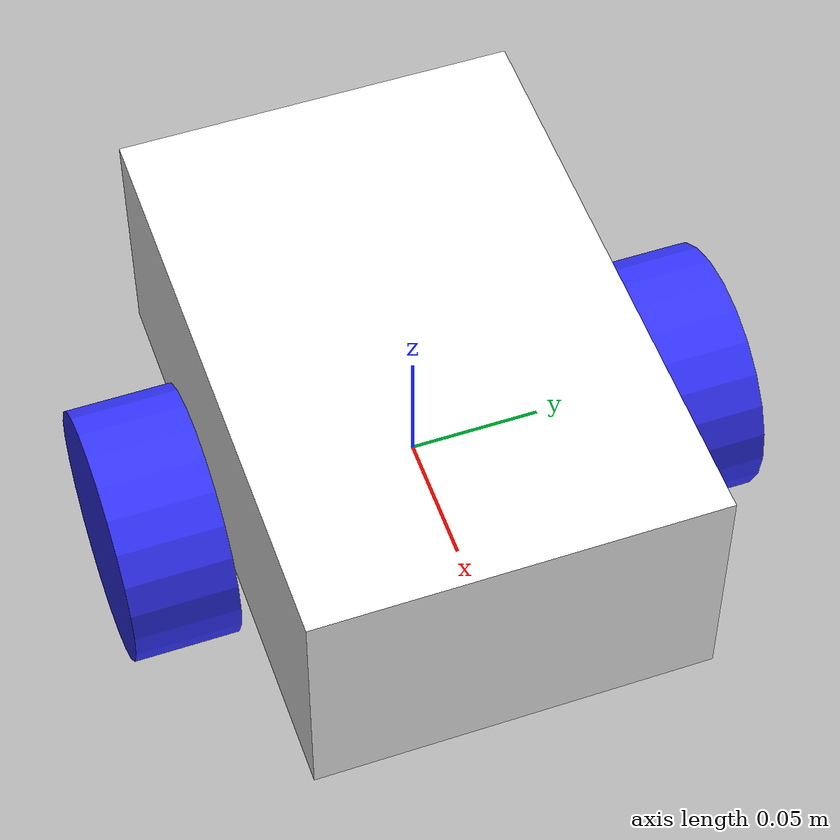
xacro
<?xml version="1.0"?>
<robot xmlns:xacro="http://www.ros.org/wiki/xacro">

    <xacro:include filename="$(find crab_bot)/crabbot_description/macros/inertial_macros.xacro" />
    <xacro:include filename="$(find crab_bot)/crabbot_description/macros/wheel.macros.xacro"/>

    <xacro:property name="chassis_length" value="0.225"/>
    <xacro:property name="chassis_width" value="0.153"/>
    <xacro:property name="chassis_height" value="0.0975"/>
    <xacro:property name="chassis_mass" value="4.0"/>
    <xacro:property name="wheel_radius" value="0.048"/>
    <xacro:property name="wheel_inner_radius" value="0.028"/>
    <xacro:property name="wheel_length" value="0.04"/>
    <xacro:property name="wheel_mass" value="0.5"/>
    <xacro:property name="wheel_separation" value="0.205"/>
    <xacro:property name="wheel_offset_x" value="0"/>
    <xacro:property name="wheel_offset_y" value="${wheel_separation/2}"/>
    <xacro:property name="wheel_offset_z" value="0.0"/>
    <xacro:property name="chassis_offset_z" value="0.02"/>
    <xacro:property name="caster_wheel_radius" value="0.02"/>
    <xacro:property name="caster_wheel_mass" value="0.1"/>
    <xacro:property name="caster_wheel_offset_x" value="0.073"/>
    <xacro:property name="caster_wheel_offset_z" value="${-wheel_radius + caster_wheel_radius + 0.001}"/>

    <material name="white">
        <color rgba="1 1 1 1"/>
    </material>

    <material name="orange">
        <color rgba="1 0.3 0.1 1"/>
    </material>

    <material name="blue">
        <color rgba="0.2 0.2 1 1"/>
    </material>

    <material name="black">
        <color rgba="0 0 0 1"/>
    </material>

    <material name="red">
        <color rgba="1 0 0 1"/>
    </material>

    <!-- BASE LINK -->

    <link name="base_link">

    </link>

    <!-- BASE_FOOTPRINT LINK -->

    <joint name="base_footprint_joint" type="fixed">
        <parent link="base_link"/>
        <child link="base_footprint"/>
        <origin xyz="0 0 -${wheel_radius}" rpy="0 0 0"/>
    </joint>

    <link name="base_footprint">
    </link>

    <!-- CHASSIS LINK -->

    <joint name="chassis_joint" type="fixed">
        <parent link="base_link"/>
        <child link="chassis"/>
        <origin xyz="0 0 ${-chassis_offset_z}"/>
    </joint>

    <link name="chassis">
        <!-- chassis visual -->
        <visual>
            <origin xyz="0 0 ${chassis_height/2}"/>
            <geometry>
                <box size="${chassis_length} ${chassis_width} ${chassis_height}"/>
            </geometry>
            <material name="white"/>
        </visual>
        <!-- chassis interact -->
        <collision>
            <origin xyz="0 0 ${chassis_height/2}"/>
            <geometry>
                <box size="${chassis_length} ${chassis_width} ${chassis_height}"/>
            </geometry>
        </collision>
        <!-- chassis phisical -->
        <xacro:inertial_box mass="${chassis_mass}" x="${chassis_length}" y="${chassis_width}" z="${chassis_height}">
            <origin xyz="0 0 ${chassis_height/2}" rpy="0 0 0"/>
        </xacro:inertial_box>
    </link>

    <gazebo reference="chassis">
        <material>Gazebo/White</material>
    </gazebo>

    <xacro:wheel prefix="right">
        <origin xyz="${wheel_offset_x} ${-wheel_offset_y} ${wheel_offset_z}" rpy="0 0 0" />
    </xacro:wheel>
    <xacro:wheel prefix="left">
        <origin xyz="${wheel_offset_x} ${wheel_offset_y} ${wheel_offset_z}" rpy="0 0 0" />
    </xacro:wheel>

    <!-- Caster wheel link -->

    <joint name="front_caster_wheel_joint" type="fixed">
        <parent link="base_link"/>
        <child link="front_caster_wheel"/>
        <origin xyz="${caster_wheel_offset_x} 0 ${caster_wheel_offset_z}"/>
    </joint>

    <link name="front_caster_wheel">
        <visual>
            <geometry>
                <sphere radius="${caster_wheel_radius}"/>1
            </geometry>
            <material name="blue"/>
        </visual>
        <collision>
            <geometry>
                <sphere radius="${caster_wheel_radius}"/>
            </geometry>
        </collision>
        <xacro:inertial_sphere mass="${caster_wheel_mass}" radius="${caster_wheel_radius}">
            <origin xyz="0 0 0" rpy="0 0 0"/>
        </xacro:inertial_sphere>
    </link>

    <gazebo reference="front_caster_wheel">
        <material>Gazebo/Blue</material>
        <mu1 value="0.001"/>
        <mu2 value="0.001"/>
    </gazebo>

    <joint name="back_caster_wheel_joint" type="fixed">
        <parent link="base_link"/>
        <child link="back_caster_wheel"/>
        <origin xyz="${-caster_wheel_offset_x} 0 ${caster_wheel_offset_z}"/>
    </joint>

    <link name="back_caster_wheel">
        <visual>
            <geometry>
                <sphere radius="${caster_wheel_radius}"/>1
            </geometry>
            <material name="blue"/>
        </visual>
        <collision>
            <geometry>
                <sphere radius="${caster_wheel_radius}"/>
            </geometry>
        </collision>
        <xacro:inertial_sphere mass="${caster_wheel_mass}" radius="${caster_wheel_radius}">
            <origin xyz="0 0 0" rpy="0 0 0"/>
        </xacro:inertial_sphere>
    </link>

    <gazebo reference="back_caster_wheel">
        <material>Gazebo/Blue</material>
        <mu1 value="0.001"/>
        <mu2 value="0.001"/>
    </gazebo>

</robot>

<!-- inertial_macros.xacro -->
<robot xmlns:xacro="http://www.ros.org/wiki/xacro" >

    <!-- Specify some standard inertial calculations https://en.wikipedia.org/wiki/List_of_moments_of_inertia -->
    <!-- These make use of xacro's mathematical functionality -->

    <xacro:macro name="inertial_sphere" params="mass radius *origin">
        <inertial>
            <xacro:insert_block name="origin"/>
            <mass value="${mass}" />
            <inertia ixx="${(2/5) * mass * (radius*radius)}" ixy="0.0" ixz="0.0"
                    iyy="${(2/5) * mass * (radius*radius)}" iyz="0.0"
                    izz="${(2/5) * mass * (radius*radius)}" />
        </inertial>
    </xacro:macro>

    <xacro:macro name="inertial_box" params="mass x y z *origin">
        <inertial>
            <xacro:insert_block name="origin"/>
            <mass value="${mass}" />
            <inertia ixx="${(1/12) * mass * (y*y+z*z)}" ixy="0.0" ixz="0.0"
                    iyy="${(1/12) * mass * (x*x+z*z)}" iyz="0.0"
                    izz="${(1/12) * mass * (x*x+y*y)}" />
        </inertial>
    </xacro:macro>

    <xacro:macro name="inertial_cylinder" params="mass length radius *origin">
        <inertial>
            <xacro:insert_block name="origin"/>
            <mass value="${mass}" />
            <inertia ixx="${(1/12) * mass * (3*radius*radius + length*length)}" ixy="0.0" ixz="0.0"
                    iyy="${(1/12) * mass * (radius*radius + length*length)}" iyz="0.0"
                    izz="${(1/12) * mass * (radius*radius)}" />
        </inertial>
    </xacro:macro>

</robot>

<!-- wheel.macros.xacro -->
<robot xmlns:xacro="http://www.ros.org/wiki/xacro">

    <!-- WHEEL MACROS -->

    <xacro:macro name="wheel" params= "prefix *joint_pose">
        <link name="${prefix}_wheel">
            <visual>
                <origin xyz="0 0 0" rpy="${pi/2} 0 0" />
                <geometry>
                    <cylinder radius="${wheel_radius}" length="${wheel_length}"/>
                </geometry>
                <material name="blue"/>
            </visual>
            <collision>
                <origin xyz="0 0 0" rpy="${pi/2} 0 0" />
                <geometry>
                    <sphere radius="${wheel_radius}"/>
                </geometry>
            </collision>
            <inertial>
                <origin xyz="0 0 0" rpy="0 0 0"/>
                <mass value="${wheel_mass}"/>
                <inertia
                    ixx="${wheel_mass / 12.0 * (3*wheel_radius*wheel_radius + wheel_length*wheel_length)}" ixy="0.0" ixz="0.0"
                    iyy="${wheel_mass / 2.0 * (wheel_radius*wheel_radius + wheel_inner_radius*wheel_inner_radius)}" iyz="0.0"
                    izz="${wheel_mass / 12.0 * (3*wheel_radius*wheel_radius + wheel_length*wheel_length)}"/>
            </inertial>
        </link>

        <joint name="${prefix}_wheel_joint" type="continuous">
            <parent link="base_link"/>
            <child link="${prefix}_wheel"/>
            <xacro:insert_block name="joint_pose"/>
            <axis xyz="0 1 0" rpy="0 0 0"/>
        </joint>

        <gazebo reference="${prefix}_wheel">
            <material>Gazebo/Black</material>
            <mu1 value="1.0"/>
            <mu2 value="0.5"/>
            <kp value="10000000.0" />
            <kd value="1.0" />
            <fdir1 value="1 0 0"/>
        </gazebo>
    </xacro:macro>

</robot>
